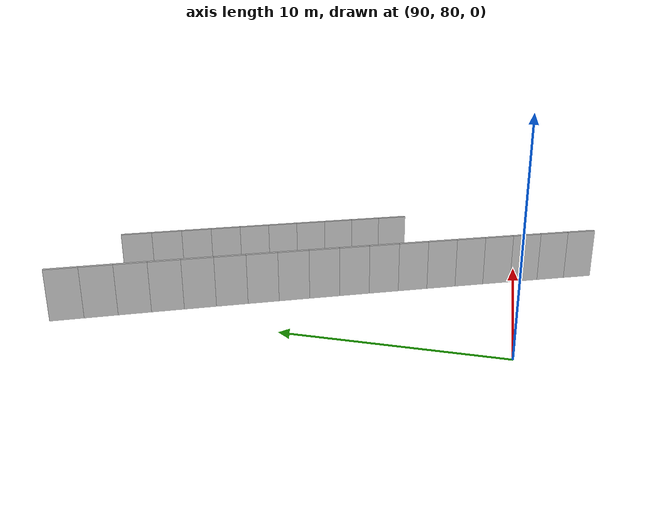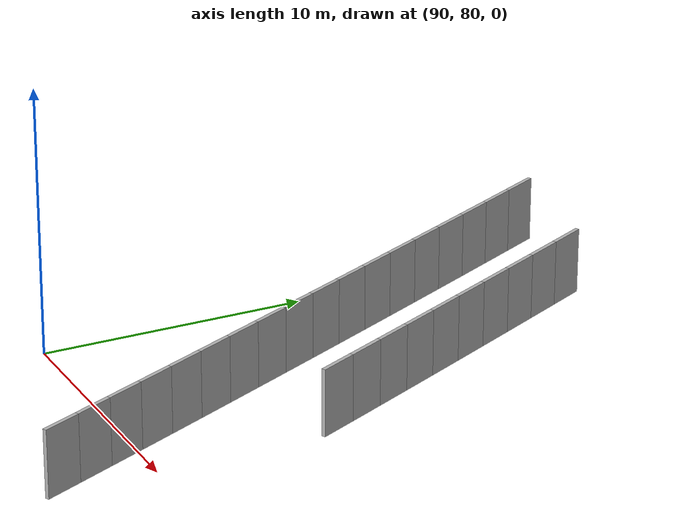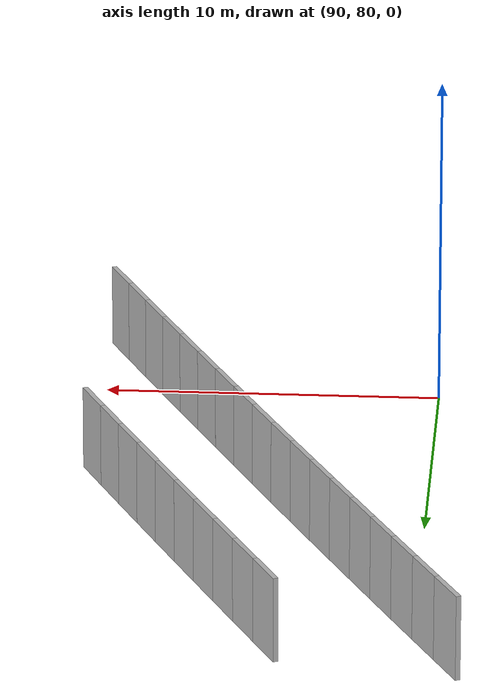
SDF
<?xml version="1.0" ?>
<sdf version="1.6">
  <model name="sps_2117">
    <pose frame="">0 0 0 0 -0 0</pose>
    <static>1</static>
    <self_collide>0</self_collide>
    <allow_auto_disable>0</allow_auto_disable>
    <link name="Wall10231">
      <kinematic>0</kinematic>
      <gravity>1</gravity>
      <self_collide>0</self_collide>
      <collision name="collision">
        <geometry>
          <box>
            <size>1.49636 0.15 2.5</size>
          </box>
        </geometry>
        <pose frame="">0 0 0 0 -0 0</pose>
      </collision>
      <visual name="visual">
        <geometry>
          <box>
            <size>1.49636 0.15 2.5</size>
          </box>
        </geometry>
        <pose frame="">0 0 0 0 -0 0</pose>
        <cast_shadows>1</cast_shadows>
        <transparency>0.0</transparency>
      </visual>
      <pose frame="">99.7951 76.7851 1.25 0 -0 1.99711</pose>
    </link>
    <link name="Wall10232">
      <kinematic>0</kinematic>
      <gravity>1</gravity>
      <self_collide>0</self_collide>
      <collision name="collision">
        <geometry>
          <box>
            <size>1.49652 0.15 2.5</size>
          </box>
        </geometry>
        <pose frame="">0 0 0 0 -0 0</pose>
      </collision>
      <visual name="visual">
        <geometry>
          <box>
            <size>1.49652 0.15 2.5</size>
          </box>
        </geometry>
        <pose frame="">0 0 0 0 -0 0</pose>
        <cast_shadows>1</cast_shadows>
        <transparency>0.0</transparency>
      </visual>
      <pose frame="">99.1752 78.1471 1.25 0 -0 1.99872</pose>
    </link>
    <link name="Wall10233">
      <kinematic>0</kinematic>
      <gravity>1</gravity>
      <self_collide>0</self_collide>
      <collision name="collision">
        <geometry>
          <box>
            <size>1.49652 0.15 2.5</size>
          </box>
        </geometry>
        <pose frame="">0 0 0 0 -0 0</pose>
      </collision>
      <visual name="visual">
        <geometry>
          <box>
            <size>1.49652 0.15 2.5</size>
          </box>
        </geometry>
        <pose frame="">0 0 0 0 -0 0</pose>
        <cast_shadows>1</cast_shadows>
        <transparency>0.0</transparency>
      </visual>
      <pose frame="">98.5531 79.5082 1.25 0 -0 2.00029</pose>
    </link>
    <link name="Wall10234">
      <kinematic>0</kinematic>
      <gravity>1</gravity>
      <self_collide>0</self_collide>
      <collision name="collision">
        <geometry>
          <box>
            <size>1.49635 0.15 2.5</size>
          </box>
        </geometry>
        <pose frame="">0 0 0 0 -0 0</pose>
      </collision>
      <visual name="visual">
        <geometry>
          <box>
            <size>1.49635 0.15 2.5</size>
          </box>
        </geometry>
        <pose frame="">0 0 0 0 -0 0</pose>
        <cast_shadows>1</cast_shadows>
        <transparency>0.0</transparency>
      </visual>
      <pose frame="">97.9288 80.8682 1.25 0 -0 2.002</pose>
    </link>
    <link name="Wall10235">
      <kinematic>0</kinematic>
      <gravity>1</gravity>
      <self_collide>0</self_collide>
      <collision name="collision">
        <geometry>
          <box>
            <size>1.4965 0.15 2.5</size>
          </box>
        </geometry>
        <pose frame="">0 0 0 0 -0 0</pose>
      </collision>
      <visual name="visual">
        <geometry>
          <box>
            <size>1.4965 0.15 2.5</size>
          </box>
        </geometry>
        <pose frame="">0 0 0 0 -0 0</pose>
        <cast_shadows>1</cast_shadows>
        <transparency>0.0</transparency>
      </visual>
      <pose frame="">97.3024 82.2272 1.25 0 -0 2.00339</pose>
    </link>
    <link name="Wall10236">
      <kinematic>0</kinematic>
      <gravity>1</gravity>
      <self_collide>0</self_collide>
      <collision name="collision">
        <geometry>
          <box>
            <size>1.49651 0.15 2.5</size>
          </box>
        </geometry>
        <pose frame="">0 0 0 0 -0 0</pose>
      </collision>
      <visual name="visual">
        <geometry>
          <box>
            <size>1.49651 0.15 2.5</size>
          </box>
        </geometry>
        <pose frame="">0 0 0 0 -0 0</pose>
        <cast_shadows>1</cast_shadows>
        <transparency>0.0</transparency>
      </visual>
      <pose frame="">96.6739 83.5853 1.25 0 -0 2.00506</pose>
    </link>
    <link name="Wall10237">
      <kinematic>0</kinematic>
      <gravity>1</gravity>
      <self_collide>0</self_collide>
      <collision name="collision">
        <geometry>
          <box>
            <size>1.49647 0.15 2.5</size>
          </box>
        </geometry>
        <pose frame="">0 0 0 0 -0 0</pose>
      </collision>
      <visual name="visual">
        <geometry>
          <box>
            <size>1.49647 0.15 2.5</size>
          </box>
        </geometry>
        <pose frame="">0 0 0 0 -0 0</pose>
        <cast_shadows>1</cast_shadows>
        <transparency>0.0</transparency>
      </visual>
      <pose frame="">96.0431 84.9424 1.25 0 -0 2.00664</pose>
    </link>
    <link name="Wall10238">
      <kinematic>0</kinematic>
      <gravity>1</gravity>
      <self_collide>0</self_collide>
      <collision name="collision">
        <geometry>
          <box>
            <size>1.49666 0.15 2.5</size>
          </box>
        </geometry>
        <pose frame="">0 0 0 0 -0 0</pose>
      </collision>
      <visual name="visual">
        <geometry>
          <box>
            <size>1.49666 0.15 2.5</size>
          </box>
        </geometry>
        <pose frame="">0 0 0 0 -0 0</pose>
        <cast_shadows>1</cast_shadows>
        <transparency>0.0</transparency>
      </visual>
      <pose frame="">95.4104 86.2986 1.25 0 -0 2.00807</pose>
    </link>
    <link name="Wall10239">
      <kinematic>0</kinematic>
      <gravity>1</gravity>
      <self_collide>0</self_collide>
      <collision name="collision">
        <geometry>
          <box>
            <size>1.49643 0.15 2.5</size>
          </box>
        </geometry>
        <pose frame="">0 0 0 0 -0 0</pose>
      </collision>
      <visual name="visual">
        <geometry>
          <box>
            <size>1.49643 0.15 2.5</size>
          </box>
        </geometry>
        <pose frame="">0 0 0 0 -0 0</pose>
        <cast_shadows>1</cast_shadows>
        <transparency>0.0</transparency>
      </visual>
      <pose frame="">94.7755 87.6538 1.25 0 -0 2.00976</pose>
    </link>
    <link name="Wall10240">
      <kinematic>0</kinematic>
      <gravity>1</gravity>
      <self_collide>0</self_collide>
      <collision name="collision">
        <geometry>
          <box>
            <size>1.49656 0.15 2.5</size>
          </box>
        </geometry>
        <pose frame="">0 0 0 0 -0 0</pose>
      </collision>
      <visual name="visual">
        <geometry>
          <box>
            <size>1.49656 0.15 2.5</size>
          </box>
        </geometry>
        <pose frame="">0 0 0 0 -0 0</pose>
        <cast_shadows>1</cast_shadows>
        <transparency>0.0</transparency>
      </visual>
      <pose frame="">94.1384 89.0079 1.25 0 -0 2.01139</pose>
    </link>
    <link name="Wall10241">
      <kinematic>0</kinematic>
      <gravity>1</gravity>
      <self_collide>0</self_collide>
      <collision name="collision">
        <geometry>
          <box>
            <size>1.49653 0.15 2.5</size>
          </box>
        </geometry>
        <pose frame="">0 0 0 0 -0 0</pose>
      </collision>
      <visual name="visual">
        <geometry>
          <box>
            <size>1.49653 0.15 2.5</size>
          </box>
        </geometry>
        <pose frame="">0 0 0 0 -0 0</pose>
        <cast_shadows>1</cast_shadows>
        <transparency>0.0</transparency>
      </visual>
      <pose frame="">93.499 90.361 1.25 0 -0 2.01297</pose>
    </link>
    <link name="Wall10242">
      <kinematic>0</kinematic>
      <gravity>1</gravity>
      <self_collide>0</self_collide>
      <collision name="collision">
        <geometry>
          <box>
            <size>1.49654 0.15 2.5</size>
          </box>
        </geometry>
        <pose frame="">0 0 0 0 -0 0</pose>
      </collision>
      <visual name="visual">
        <geometry>
          <box>
            <size>1.49654 0.15 2.5</size>
          </box>
        </geometry>
        <pose frame="">0 0 0 0 -0 0</pose>
        <cast_shadows>1</cast_shadows>
        <transparency>0.0</transparency>
      </visual>
      <pose frame="">92.8576 91.7131 1.25 0 -0 2.0146</pose>
    </link>
    <link name="Wall10243">
      <kinematic>0</kinematic>
      <gravity>1</gravity>
      <self_collide>0</self_collide>
      <collision name="collision">
        <geometry>
          <box>
            <size>1.49658 0.15 2.5</size>
          </box>
        </geometry>
        <pose frame="">0 0 0 0 -0 0</pose>
      </collision>
      <visual name="visual">
        <geometry>
          <box>
            <size>1.49658 0.15 2.5</size>
          </box>
        </geometry>
        <pose frame="">0 0 0 0 -0 0</pose>
        <cast_shadows>1</cast_shadows>
        <transparency>0.0</transparency>
      </visual>
      <pose frame="">92.214 93.0642 1.25 0 -0 2.01608</pose>
    </link>
    <link name="Wall10244">
      <kinematic>0</kinematic>
      <gravity>1</gravity>
      <self_collide>0</self_collide>
      <collision name="collision">
        <geometry>
          <box>
            <size>1.49646 0.15 2.5</size>
          </box>
        </geometry>
        <pose frame="">0 0 0 0 -0 0</pose>
      </collision>
      <visual name="visual">
        <geometry>
          <box>
            <size>1.49646 0.15 2.5</size>
          </box>
        </geometry>
        <pose frame="">0 0 0 0 -0 0</pose>
        <cast_shadows>1</cast_shadows>
        <transparency>0.0</transparency>
      </visual>
      <pose frame="">91.5684 94.4143 1.25 0 -0 2.01761</pose>
    </link>
    <link name="Wall10245">
      <kinematic>0</kinematic>
      <gravity>1</gravity>
      <self_collide>0</self_collide>
      <collision name="collision">
        <geometry>
          <box>
            <size>1.49642 0.15 2.5</size>
          </box>
        </geometry>
        <pose frame="">0 0 0 0 -0 0</pose>
      </collision>
      <visual name="visual">
        <geometry>
          <box>
            <size>1.49642 0.15 2.5</size>
          </box>
        </geometry>
        <pose frame="">0 0 0 0 -0 0</pose>
        <cast_shadows>1</cast_shadows>
        <transparency>0.0</transparency>
      </visual>
      <pose frame="">90.9207 95.7633 1.25 0 -0 2.01925</pose>
    </link>
    <link name="Wall10246">
      <kinematic>0</kinematic>
      <gravity>1</gravity>
      <self_collide>0</self_collide>
      <collision name="collision">
        <geometry>
          <box>
            <size>1.49671 0.15 2.5</size>
          </box>
        </geometry>
        <pose frame="">0 0 0 0 -0 0</pose>
      </collision>
      <visual name="visual">
        <geometry>
          <box>
            <size>1.49671 0.15 2.5</size>
          </box>
        </geometry>
        <pose frame="">0 0 0 0 -0 0</pose>
        <cast_shadows>1</cast_shadows>
        <transparency>0.0</transparency>
      </visual>
      <pose frame="">90.2707 97.1113 1.25 0 -0 2.02097</pose>
    </link>
    <link name="Wall10247">
      <kinematic>0</kinematic>
      <gravity>1</gravity>
      <self_collide>0</self_collide>
      <collision name="collision">
        <geometry>
          <box>
            <size>1.49646 0.15 2.5</size>
          </box>
        </geometry>
        <pose frame="">0 0 0 0 -0 0</pose>
      </collision>
      <visual name="visual">
        <geometry>
          <box>
            <size>1.49646 0.15 2.5</size>
          </box>
        </geometry>
        <pose frame="">0 0 0 0 -0 0</pose>
        <cast_shadows>1</cast_shadows>
        <transparency>0.0</transparency>
      </visual>
      <pose frame="">89.6184 98.4583 1.25 0 -0 2.0225</pose>
    </link>
    <link name="Wall10248">
      <kinematic>0</kinematic>
      <gravity>1</gravity>
      <self_collide>0</self_collide>
      <collision name="collision">
        <geometry>
          <box>
            <size>1.49654 0.15 2.5</size>
          </box>
        </geometry>
        <pose frame="">0 0 0 0 -0 0</pose>
      </collision>
      <visual name="visual">
        <geometry>
          <box>
            <size>1.49654 0.15 2.5</size>
          </box>
        </geometry>
        <pose frame="">0 0 0 0 -0 0</pose>
        <cast_shadows>1</cast_shadows>
        <transparency>0.0</transparency>
      </visual>
      <pose frame="">88.9641 99.8042 1.25 0 -0 2.0241</pose>
    </link>
    <link name="Wall10834">
      <kinematic>0</kinematic>
      <gravity>1</gravity>
      <self_collide>0</self_collide>
      <collision name="collision">
        <geometry>
          <box>
            <size>1.50305 0.15 2.5</size>
          </box>
        </geometry>
        <pose frame="">0 0 0 0 -0 0</pose>
      </collision>
      <visual name="visual">
        <geometry>
          <box>
            <size>1.50305 0.15 2.5</size>
          </box>
        </geometry>
        <pose frame="">0 0 0 0 -0 0</pose>
        <cast_shadows>1</cast_shadows>
        <transparency>0.0</transparency>
      </visual>
      <pose frame="">99.796 86.6906 1.25 0 -0 2.00653</pose>
    </link>
    <link name="Wall10835">
      <kinematic>0</kinematic>
      <gravity>1</gravity>
      <self_collide>0</self_collide>
      <collision name="collision">
        <geometry>
          <box>
            <size>1.50304 0.15 2.5</size>
          </box>
        </geometry>
        <pose frame="">0 0 0 0 -0 0</pose>
      </collision>
      <visual name="visual">
        <geometry>
          <box>
            <size>1.50304 0.15 2.5</size>
          </box>
        </geometry>
        <pose frame="">0 0 0 0 -0 0</pose>
        <cast_shadows>1</cast_shadows>
        <transparency>0.0</transparency>
      </visual>
      <pose frame="">99.1605 88.0527 1.25 0 -0 2.00814</pose>
    </link>
    <link name="Wall10836">
      <kinematic>0</kinematic>
      <gravity>1</gravity>
      <self_collide>0</self_collide>
      <collision name="collision">
        <geometry>
          <box>
            <size>1.50317 0.15 2.5</size>
          </box>
        </geometry>
        <pose frame="">0 0 0 0 -0 0</pose>
      </collision>
      <visual name="visual">
        <geometry>
          <box>
            <size>1.50317 0.15 2.5</size>
          </box>
        </geometry>
        <pose frame="">0 0 0 0 -0 0</pose>
        <cast_shadows>1</cast_shadows>
        <transparency>0.0</transparency>
      </visual>
      <pose frame="">98.5228 89.4138 1.25 0 -0 2.00985</pose>
    </link>
    <link name="Wall10837">
      <kinematic>0</kinematic>
      <gravity>1</gravity>
      <self_collide>0</self_collide>
      <collision name="collision">
        <geometry>
          <box>
            <size>1.50314 0.15 2.5</size>
          </box>
        </geometry>
        <pose frame="">0 0 0 0 -0 0</pose>
      </collision>
      <visual name="visual">
        <geometry>
          <box>
            <size>1.50314 0.15 2.5</size>
          </box>
        </geometry>
        <pose frame="">0 0 0 0 -0 0</pose>
        <cast_shadows>1</cast_shadows>
        <transparency>0.0</transparency>
      </visual>
      <pose frame="">97.8828 90.7739 1.25 0 -0 2.01134</pose>
    </link>
    <link name="Wall10838">
      <kinematic>0</kinematic>
      <gravity>1</gravity>
      <self_collide>0</self_collide>
      <collision name="collision">
        <geometry>
          <box>
            <size>1.503 0.15 2.5</size>
          </box>
        </geometry>
        <pose frame="">0 0 0 0 -0 0</pose>
      </collision>
      <visual name="visual">
        <geometry>
          <box>
            <size>1.503 0.15 2.5</size>
          </box>
        </geometry>
        <pose frame="">0 0 0 0 -0 0</pose>
        <cast_shadows>1</cast_shadows>
        <transparency>0.0</transparency>
      </visual>
      <pose frame="">97.2407 92.1329 1.25 0 -0 2.01305</pose>
    </link>
    <link name="Wall10839">
      <kinematic>0</kinematic>
      <gravity>1</gravity>
      <self_collide>0</self_collide>
      <collision name="collision">
        <geometry>
          <box>
            <size>1.50312 0.15 2.5</size>
          </box>
        </geometry>
        <pose frame="">0 0 0 0 -0 0</pose>
      </collision>
      <visual name="visual">
        <geometry>
          <box>
            <size>1.50312 0.15 2.5</size>
          </box>
        </geometry>
        <pose frame="">0 0 0 0 -0 0</pose>
        <cast_shadows>1</cast_shadows>
        <transparency>0.0</transparency>
      </visual>
      <pose frame="">96.5964 93.4909 1.25 0 -0 2.01445</pose>
    </link>
    <link name="Wall10840">
      <kinematic>0</kinematic>
      <gravity>1</gravity>
      <self_collide>0</self_collide>
      <collision name="collision">
        <geometry>
          <box>
            <size>1.50297 0.15 2.5</size>
          </box>
        </geometry>
        <pose frame="">0 0 0 0 -0 0</pose>
      </collision>
      <visual name="visual">
        <geometry>
          <box>
            <size>1.50297 0.15 2.5</size>
          </box>
        </geometry>
        <pose frame="">0 0 0 0 -0 0</pose>
        <cast_shadows>1</cast_shadows>
        <transparency>0.0</transparency>
      </visual>
      <pose frame="">95.9501 94.8479 1.25 0 -0 2.01612</pose>
    </link>
    <link name="Wall10841">
      <kinematic>0</kinematic>
      <gravity>1</gravity>
      <self_collide>0</self_collide>
      <collision name="collision">
        <geometry>
          <box>
            <size>1.5032 0.15 2.5</size>
          </box>
        </geometry>
        <pose frame="">0 0 0 0 -0 0</pose>
      </collision>
      <visual name="visual">
        <geometry>
          <box>
            <size>1.5032 0.15 2.5</size>
          </box>
        </geometry>
        <pose frame="">0 0 0 0 -0 0</pose>
        <cast_shadows>1</cast_shadows>
        <transparency>0.0</transparency>
      </visual>
      <pose frame="">95.3016 96.2039 1.25 0 -0 2.01766</pose>
    </link>
    <link name="Wall10842">
      <kinematic>0</kinematic>
      <gravity>1</gravity>
      <self_collide>0</self_collide>
      <collision name="collision">
        <geometry>
          <box>
            <size>1.503 0.15 2.5</size>
          </box>
        </geometry>
        <pose frame="">0 0 0 0 -0 0</pose>
      </collision>
      <visual name="visual">
        <geometry>
          <box>
            <size>1.503 0.15 2.5</size>
          </box>
        </geometry>
        <pose frame="">0 0 0 0 -0 0</pose>
        <cast_shadows>1</cast_shadows>
        <transparency>0.0</transparency>
      </visual>
      <pose frame="">94.6511 97.5589 1.25 0 -0 2.01917</pose>
    </link>
    <link name="Wall10843">
      <kinematic>0</kinematic>
      <gravity>1</gravity>
      <self_collide>0</self_collide>
      <collision name="collision">
        <geometry>
          <box>
            <size>1.50304 0.15 2.5</size>
          </box>
        </geometry>
        <pose frame="">0 0 0 0 -0 0</pose>
      </collision>
      <visual name="visual">
        <geometry>
          <box>
            <size>1.50304 0.15 2.5</size>
          </box>
        </geometry>
        <pose frame="">0 0 0 0 -0 0</pose>
        <cast_shadows>1</cast_shadows>
        <transparency>0.0</transparency>
      </visual>
      <pose frame="">93.9984 98.9128 1.25 0 -0 2.02082</pose>
    </link>
  </model>
</sdf>
